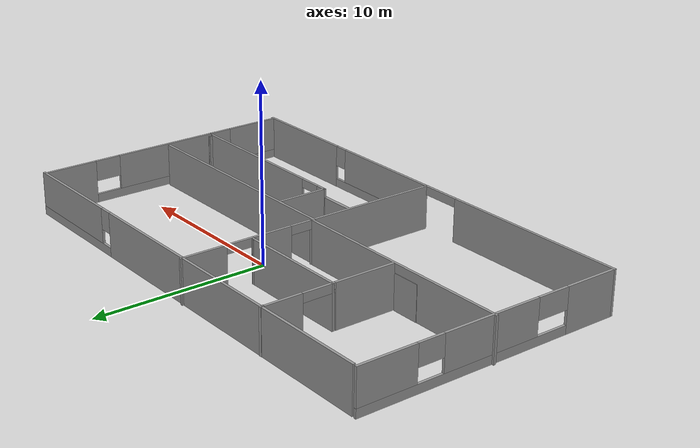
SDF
<?xml version='1.0'?>
<sdf version='1.7'>
  <model name='home'>
    <pose>-0.882719 -2.12141 0 0 -0 0</pose>
    <link name='Door_10'>
      <collision name='Door_10_Collision'>
        <geometry>
          <box>
            <size>3.07769 0.2 2</size>
          </box>
        </geometry>
        <pose>0 0 1 0 -0 0</pose>
      </collision>
      <visual name='Door_10_Visual'>
        <pose>0 0 1 0 -0 0</pose>
        <geometry>
          <box>
            <size>3.07769 0.2 2</size>
          </box>
        </geometry>
        <material>
          <script>
            <uri>file://media/materials/scripts/gazebo.material</uri>
            <name>Gazebo/Grey</name>
          </script>
        </material>
      </visual>
      <pose>1.13582 -3.22458 0 0 -0 0</pose>
    </link>
    <link name='Door_6'>
      <collision name='Door_6_Collision'>
        <geometry>
          <box>
            <size>1.6259 0.2 2</size>
          </box>
        </geometry>
        <pose>0 0 1 0 -0 0</pose>
      </collision>
      <visual name='Door_6_Visual'>
        <pose>0 0 1 0 -0 0</pose>
        <geometry>
          <box>
            <size>1.6259 0.2 2</size>
          </box>
        </geometry>
        <material>
          <script>
            <uri>file://media/materials/scripts/gazebo.material</uri>
            <name>Gazebo/Grey</name>
          </script>
        </material>
      </visual>
      <pose>-7.85189 -0.048771 0 0 -0 0</pose>
    </link>
    <link name='Wall_53'>
      <pose>0.181474 7.75463 0 0 -0 0</pose>
      <visual name='Wall_53_Visual_0'>
        <pose>-3.65102 0 1.25 0 -0 0</pose>
        <geometry>
          <box>
            <size>20.1567 0.15 2.5</size>
          </box>
        </geometry>
        <material>
          <script>
            <uri>file://media/materials/scripts/gazebo.material</uri>
            <name>Gazebo/Grey</name>
          </script>
          <ambient>1 1 1 1</ambient>
        </material>
        <meta>
          <layer>0</layer>
        </meta>
      </visual>
      <collision name='Wall_53_Collision_0'>
        <geometry>
          <box>
            <size>20.1567 0.15 2.5</size>
          </box>
        </geometry>
        <pose>-3.65102 0 1.25 0 -0 0</pose>
      </collision>
      <visual name='Wall_53_Visual_1'>
        <pose>10.0783 0 0.25 0 -0 0</pose>
        <geometry>
          <box>
            <size>7.30203 0.15 0.5</size>
          </box>
        </geometry>
        <material>
          <script>
            <uri>file://media/materials/scripts/gazebo.material</uri>
            <name>Gazebo/Grey</name>
          </script>
          <ambient>1 1 1 1</ambient>
        </material>
        <meta>
          <layer>0</layer>
        </meta>
      </visual>
      <collision name='Wall_53_Collision_1'>
        <geometry>
          <box>
            <size>7.30203 0.15 0.5</size>
          </box>
        </geometry>
        <pose>10.0783 0 0.25 0 -0 0</pose>
      </collision>
      <visual name='Wall_53_Visual_2'>
        <pose>10.4783 0 1.5 0 -0 0</pose>
        <geometry>
          <box>
            <size>6.50203 0.15 2</size>
          </box>
        </geometry>
        <material>
          <script>
            <uri>file://media/materials/scripts/gazebo.material</uri>
            <name>Gazebo/Grey</name>
          </script>
          <ambient>1 1 1 1</ambient>
        </material>
        <meta>
          <layer>0</layer>
        </meta>
      </visual>
      <collision name='Wall_53_Collision_2'>
        <geometry>
          <box>
            <size>6.50203 0.15 2</size>
          </box>
        </geometry>
        <pose>10.4783 0 1.5 0 -0 0</pose>
      </collision>
      <visual name='Wall_53_Visual_3'>
        <pose>6.82732 0 1.9 0 -0 0</pose>
        <geometry>
          <box>
            <size>0.8 0.15 1.2</size>
          </box>
        </geometry>
        <material>
          <script>
            <uri>file://media/materials/scripts/gazebo.material</uri>
            <name>Gazebo/Grey</name>
          </script>
          <ambient>1 1 1 1</ambient>
        </material>
        <meta>
          <layer>0</layer>
        </meta>
      </visual>
      <collision name='Wall_53_Collision_3'>
        <geometry>
          <box>
            <size>0.8 0.15 1.2</size>
          </box>
        </geometry>
        <pose>6.82732 0 1.9 0 -0 0</pose>
      </collision>
    </link>
    <link name='Wall_54'>
      <pose>13.7315 -0.045369 0 0 -0 -1.5708</pose>
      <visual name='Wall_54_Visual_0'>
        <pose>-6.26812 0 1.25 0 -0 0</pose>
        <geometry>
          <box>
            <size>3.21375 0.15 2.5</size>
          </box>
        </geometry>
        <material>
          <script>
            <uri>file://media/materials/scripts/gazebo.material</uri>
            <name>Gazebo/Grey</name>
          </script>
          <ambient>1 1 1 1</ambient>
        </material>
        <meta>
          <layer>0</layer>
        </meta>
      </visual>
      <collision name='Wall_54_Collision_0'>
        <geometry>
          <box>
            <size>3.21375 0.15 2.5</size>
          </box>
        </geometry>
        <pose>-6.26812 0 1.25 0 -0 0</pose>
      </collision>
      <visual name='Wall_54_Visual_1'>
        <pose>1.60688 0 0.25 0 -0 0</pose>
        <geometry>
          <box>
            <size>12.5362 0.15 0.5</size>
          </box>
        </geometry>
        <material>
          <script>
            <uri>file://media/materials/scripts/gazebo.material</uri>
            <name>Gazebo/Grey</name>
          </script>
          <ambient>1 1 1 1</ambient>
        </material>
        <meta>
          <layer>0</layer>
        </meta>
      </visual>
      <collision name='Wall_54_Collision_1'>
        <geometry>
          <box>
            <size>12.5362 0.15 0.5</size>
          </box>
        </geometry>
        <pose>1.60688 0 0.25 0 -0 0</pose>
      </collision>
      <visual name='Wall_54_Visual_2'>
        <pose>0.003403 0 1.5 0 -0 0</pose>
        <geometry>
          <box>
            <size>6.2775 0.15 2</size>
          </box>
        </geometry>
        <material>
          <script>
            <uri>file://media/materials/scripts/gazebo.material</uri>
            <name>Gazebo/Grey</name>
          </script>
          <ambient>1 1 1 1</ambient>
        </material>
        <meta>
          <layer>0</layer>
        </meta>
      </visual>
      <collision name='Wall_54_Collision_2'>
        <geometry>
          <box>
            <size>6.2775 0.15 2</size>
          </box>
        </geometry>
        <pose>0.003403 0 1.5 0 -0 0</pose>
      </collision>
      <visual name='Wall_54_Visual_3'>
        <pose>6.18079 0 1.5 0 -0 0</pose>
        <geometry>
          <box>
            <size>3.38842 0.15 2</size>
          </box>
        </geometry>
        <material>
          <script>
            <uri>file://media/materials/scripts/gazebo.material</uri>
            <name>Gazebo/Grey</name>
          </script>
          <ambient>1 1 1 1</ambient>
        </material>
        <meta>
          <layer>0</layer>
        </meta>
      </visual>
      <collision name='Wall_54_Collision_3'>
        <geometry>
          <box>
            <size>3.38842 0.15 2</size>
          </box>
        </geometry>
        <pose>6.18079 0 1.5 0 -0 0</pose>
      </collision>
      <visual name='Wall_54_Visual_4'>
        <pose>-3.8983 0 1.9 0 -0 0</pose>
        <geometry>
          <box>
            <size>1.5259 0.15 1.2</size>
          </box>
        </geometry>
        <material>
          <script>
            <uri>file://media/materials/scripts/gazebo.material</uri>
            <name>Gazebo/Grey</name>
          </script>
          <ambient>1 1 1 1</ambient>
        </material>
        <meta>
          <layer>0</layer>
        </meta>
      </visual>
      <collision name='Wall_54_Collision_4'>
        <geometry>
          <box>
            <size>1.5259 0.15 1.2</size>
          </box>
        </geometry>
        <pose>-3.8983 0 1.9 0 -0 0</pose>
      </collision>
      <visual name='Wall_54_Visual_5'>
        <pose>3.81437 0 1.9 0 -0 0</pose>
        <geometry>
          <box>
            <size>1.34442 0.15 1.2</size>
          </box>
        </geometry>
        <material>
          <script>
            <uri>file://media/materials/scripts/gazebo.material</uri>
            <name>Gazebo/Grey</name>
          </script>
          <ambient>1 1 1 1</ambient>
        </material>
        <meta>
          <layer>0</layer>
        </meta>
      </visual>
      <collision name='Wall_54_Collision_5'>
        <geometry>
          <box>
            <size>1.34442 0.15 1.2</size>
          </box>
        </geometry>
        <pose>3.81437 0 1.9 0 -0 0</pose>
      </collision>
    </link>
    <link name='Wall_55'>
      <pose>0.056474 -7.84537 0 0 -0 3.14159</pose>
      <visual name='Wall_55_Visual_0'>
        <pose>-10.6036 0 1.25 0 -0 0</pose>
        <geometry>
          <box>
            <size>6.50155 0.15 2.5</size>
          </box>
        </geometry>
        <material>
          <script>
            <uri>file://media/materials/scripts/gazebo.material</uri>
            <name>Gazebo/Grey</name>
          </script>
          <ambient>1 1 1 1</ambient>
        </material>
        <meta>
          <layer>0</layer>
        </meta>
      </visual>
      <collision name='Wall_55_Collision_0'>
        <geometry>
          <box>
            <size>6.50155 0.15 2.5</size>
          </box>
        </geometry>
        <pose>-10.6036 0 1.25 0 -0 0</pose>
      </collision>
      <visual name='Wall_55_Visual_1'>
        <pose>8.31306 0 1.25 0 -0 0</pose>
        <geometry>
          <box>
            <size>11.0826 0.15 2.5</size>
          </box>
        </geometry>
        <material>
          <script>
            <uri>file://media/materials/scripts/gazebo.material</uri>
            <name>Gazebo/Grey</name>
          </script>
          <ambient>1 1 1 1</ambient>
        </material>
        <meta>
          <layer>0</layer>
        </meta>
      </visual>
      <collision name='Wall_55_Collision_1'>
        <geometry>
          <box>
            <size>11.0826 0.15 2.5</size>
          </box>
        </geometry>
        <pose>8.31306 0 1.25 0 -0 0</pose>
      </collision>
      <visual name='Wall_55_Visual_2'>
        <pose>-3.46641 0 0.25 0 -0 0</pose>
        <geometry>
          <box>
            <size>7.77277 0.15 0.5</size>
          </box>
        </geometry>
        <material>
          <script>
            <uri>file://media/materials/scripts/gazebo.material</uri>
            <name>Gazebo/Grey</name>
          </script>
          <ambient>1 1 1 1</ambient>
        </material>
        <meta>
          <layer>0</layer>
        </meta>
      </visual>
      <collision name='Wall_55_Collision_2'>
        <geometry>
          <box>
            <size>7.77277 0.15 0.5</size>
          </box>
        </geometry>
        <pose>-3.46641 0 0.25 0 -0 0</pose>
      </collision>
      <visual name='Wall_55_Visual_3'>
        <pose>-3.06641 0 1.5 0 -0 0</pose>
        <geometry>
          <box>
            <size>6.97277 0.15 2</size>
          </box>
        </geometry>
        <material>
          <script>
            <uri>file://media/materials/scripts/gazebo.material</uri>
            <name>Gazebo/Grey</name>
          </script>
          <ambient>1 1 1 1</ambient>
        </material>
        <meta>
          <layer>0</layer>
        </meta>
      </visual>
      <collision name='Wall_55_Collision_3'>
        <geometry>
          <box>
            <size>6.97277 0.15 2</size>
          </box>
        </geometry>
        <pose>-3.06641 0 1.5 0 -0 0</pose>
      </collision>
      <visual name='Wall_55_Visual_4'>
        <pose>-6.95279 0 1.9 0 -0 0</pose>
        <geometry>
          <box>
            <size>0.8 0.15 1.2</size>
          </box>
        </geometry>
        <material>
          <script>
            <uri>file://media/materials/scripts/gazebo.material</uri>
            <name>Gazebo/Grey</name>
          </script>
          <ambient>1 1 1 1</ambient>
        </material>
        <meta>
          <layer>0</layer>
        </meta>
      </visual>
      <collision name='Wall_55_Collision_4'>
        <geometry>
          <box>
            <size>0.8 0.15 1.2</size>
          </box>
        </geometry>
        <pose>-6.95279 0 1.9 0 -0 0</pose>
      </collision>
      <visual name='Wall_55_Visual_5'>
        <pose>1.59587 0 2.25 0 -0 0</pose>
        <geometry>
          <box>
            <size>2.3518 0.15 0.5</size>
          </box>
        </geometry>
        <material>
          <script>
            <uri>file://media/materials/scripts/gazebo.material</uri>
            <name>Gazebo/Grey</name>
          </script>
          <ambient>1 1 1 1</ambient>
        </material>
        <meta>
          <layer>0</layer>
        </meta>
      </visual>
      <collision name='Wall_55_Collision_5'>
        <geometry>
          <box>
            <size>2.3518 0.15 0.5</size>
          </box>
        </geometry>
        <pose>1.59587 0 2.25 0 -0 0</pose>
      </collision>
    </link>
    <link name='Wall_56'>
      <pose>-13.7229 -0.045369 0 0 -0 1.5708</pose>
      <visual name='Wall_56_Visual_0'>
        <pose>-6.27153 0 1.25 0 -0 0</pose>
        <geometry>
          <box>
            <size>3.20695 0.15 2.5</size>
          </box>
        </geometry>
        <material>
          <script>
            <uri>file://media/materials/scripts/gazebo.material</uri>
            <name>Gazebo/Grey</name>
          </script>
          <ambient>1 1 1 1</ambient>
        </material>
        <meta>
          <layer>0</layer>
        </meta>
      </visual>
      <collision name='Wall_56_Collision_0'>
        <geometry>
          <box>
            <size>3.20695 0.15 2.5</size>
          </box>
        </geometry>
        <pose>-6.27153 0 1.25 0 -0 0</pose>
      </collision>
      <visual name='Wall_56_Visual_1'>
        <pose>1.60347 0 0.25 0 -0 0</pose>
        <geometry>
          <box>
            <size>12.5431 0.15 0.5</size>
          </box>
        </geometry>
        <material>
          <script>
            <uri>file://media/materials/scripts/gazebo.material</uri>
            <name>Gazebo/Grey</name>
          </script>
          <ambient>1 1 1 1</ambient>
        </material>
        <meta>
          <layer>0</layer>
        </meta>
      </visual>
      <collision name='Wall_56_Collision_1'>
        <geometry>
          <box>
            <size>12.5431 0.15 0.5</size>
          </box>
        </geometry>
        <pose>1.60347 0 0.25 0 -0 0</pose>
      </collision>
      <visual name='Wall_56_Visual_2'>
        <pose>0.087335 0 1.5 0 -0 0</pose>
        <geometry>
          <box>
            <size>5.73308 0.15 2</size>
          </box>
        </geometry>
        <material>
          <script>
            <uri>file://media/materials/scripts/gazebo.material</uri>
            <name>Gazebo/Grey</name>
          </script>
          <ambient>1 1 1 1</ambient>
        </material>
        <meta>
          <layer>0</layer>
        </meta>
      </visual>
      <collision name='Wall_56_Collision_2'>
        <geometry>
          <box>
            <size>5.73308 0.15 2</size>
          </box>
        </geometry>
        <pose>0.087335 0 1.5 0 -0 0</pose>
      </collision>
      <visual name='Wall_56_Visual_3'>
        <pose>6.17739 0 1.5 0 -0 0</pose>
        <geometry>
          <box>
            <size>3.39523 0.15 2</size>
          </box>
        </geometry>
        <material>
          <script>
            <uri>file://media/materials/scripts/gazebo.material</uri>
            <name>Gazebo/Grey</name>
          </script>
          <ambient>1 1 1 1</ambient>
        </material>
        <meta>
          <layer>0</layer>
        </meta>
      </visual>
      <collision name='Wall_56_Collision_3'>
        <geometry>
          <box>
            <size>3.39523 0.15 2</size>
          </box>
        </geometry>
        <pose>6.17739 0 1.5 0 -0 0</pose>
      </collision>
      <visual name='Wall_56_Visual_4'>
        <pose>-3.72363 0 1.9 0 -0 0</pose>
        <geometry>
          <box>
            <size>1.88885 0.15 1.2</size>
          </box>
        </geometry>
        <material>
          <script>
            <uri>file://media/materials/scripts/gazebo.material</uri>
            <name>Gazebo/Grey</name>
          </script>
          <ambient>1 1 1 1</ambient>
        </material>
        <meta>
          <layer>0</layer>
        </meta>
      </visual>
      <collision name='Wall_56_Collision_4'>
        <geometry>
          <box>
            <size>1.88885 0.15 1.2</size>
          </box>
        </geometry>
        <pose>-3.72363 0 1.9 0 -0 0</pose>
      </collision>
      <visual name='Wall_56_Visual_5'>
        <pose>3.71682 0 1.9 0 -0 0</pose>
        <geometry>
          <box>
            <size>1.5259 0.15 1.2</size>
          </box>
        </geometry>
        <material>
          <script>
            <uri>file://media/materials/scripts/gazebo.material</uri>
            <name>Gazebo/Grey</name>
          </script>
          <ambient>1 1 1 1</ambient>
        </material>
        <meta>
          <layer>0</layer>
        </meta>
      </visual>
      <collision name='Wall_56_Collision_5'>
        <geometry>
          <box>
            <size>1.5259 0.15 1.2</size>
          </box>
        </geometry>
        <pose>3.71682 0 1.9 0 -0 0</pose>
      </collision>
    </link>
    <link name='Wall_58'>
      <pose>-0.406711 0.045368 0 0 -0 -1.5708</pose>
      <visual name='Wall_58_Visual_0'>
        <pose>-6.5297 0 1.25 0 -0 0</pose>
        <geometry>
          <box>
            <size>2.6906 0.15 2.5</size>
          </box>
        </geometry>
        <material>
          <script>
            <uri>file://media/materials/scripts/gazebo.material</uri>
            <name>Gazebo/Grey</name>
          </script>
          <ambient>1 1 1 1</ambient>
        </material>
        <meta>
          <layer>0</layer>
        </meta>
      </visual>
      <collision name='Wall_58_Collision_0'>
        <geometry>
          <box>
            <size>2.6906 0.15 2.5</size>
          </box>
        </geometry>
        <pose>-6.5297 0 1.25 0 -0 0</pose>
      </collision>
      <visual name='Wall_58_Visual_1'>
        <pose>-2.4086 0 1.25 0 -0 0</pose>
        <geometry>
          <box>
            <size>2.29073 0.15 2.5</size>
          </box>
        </geometry>
        <material>
          <script>
            <uri>file://media/materials/scripts/gazebo.material</uri>
            <name>Gazebo/Grey</name>
          </script>
          <ambient>1 1 1 1</ambient>
        </material>
        <meta>
          <layer>0</layer>
        </meta>
      </visual>
      <collision name='Wall_58_Collision_1'>
        <geometry>
          <box>
            <size>2.29073 0.15 2.5</size>
          </box>
        </geometry>
        <pose>-2.4086 0 1.25 0 -0 0</pose>
      </collision>
      <visual name='Wall_58_Visual_2'>
        <pose>3.93736 0 1.25 0 -0 0</pose>
        <geometry>
          <box>
            <size>7.87528 0.15 2.5</size>
          </box>
        </geometry>
        <material>
          <script>
            <uri>file://media/materials/scripts/gazebo.material</uri>
            <name>Gazebo/Grey</name>
          </script>
          <ambient>1 1 1 1</ambient>
        </material>
        <meta>
          <layer>0</layer>
        </meta>
      </visual>
      <collision name='Wall_58_Collision_2'>
        <geometry>
          <box>
            <size>7.87528 0.15 2.5</size>
          </box>
        </geometry>
        <pose>3.93736 0 1.25 0 -0 0</pose>
      </collision>
      <visual name='Wall_58_Visual_3'>
        <pose>-4.36918 0 2.25 0 -0 0</pose>
        <geometry>
          <box>
            <size>1.63044 0.15 0.5</size>
          </box>
        </geometry>
        <material>
          <script>
            <uri>file://media/materials/scripts/gazebo.material</uri>
            <name>Gazebo/Grey</name>
          </script>
          <ambient>1 1 1 1</ambient>
        </material>
        <meta>
          <layer>0</layer>
        </meta>
      </visual>
      <collision name='Wall_58_Collision_3'>
        <geometry>
          <box>
            <size>1.63044 0.15 0.5</size>
          </box>
        </geometry>
        <pose>-4.36918 0 2.25 0 -0 0</pose>
      </collision>
      <visual name='Wall_58_Visual_4'>
        <pose>-0.631758 0 2.25 0 -0 0</pose>
        <geometry>
          <box>
            <size>1.26295 0.15 0.5</size>
          </box>
        </geometry>
        <material>
          <script>
            <uri>file://media/materials/scripts/gazebo.material</uri>
            <name>Gazebo/Grey</name>
          </script>
          <ambient>1 1 1 1</ambient>
        </material>
        <meta>
          <layer>0</layer>
        </meta>
      </visual>
      <collision name='Wall_58_Collision_4'>
        <geometry>
          <box>
            <size>1.26295 0.15 0.5</size>
          </box>
        </geometry>
        <pose>-0.631758 0 2.25 0 -0 0</pose>
      </collision>
    </link>
    <link name='Wall_59'>
      <collision name='Wall_59_Collision'>
        <geometry>
          <box>
            <size>0.16 0.15 2.5</size>
          </box>
        </geometry>
        <pose>0 0 1.25 0 -0 0</pose>
      </collision>
      <visual name='Wall_59_Visual'>
        <pose>0 0 1.25 0 -0 0</pose>
        <geometry>
          <box>
            <size>0.16 0.15 2.5</size>
          </box>
        </geometry>
        <material>
          <script>
            <uri>file://media/materials/scripts/gazebo.material</uri>
            <name>Gazebo/Grey</name>
          </script>
          <ambient>1 1 1 1</ambient>
        </material>
        <meta>
          <layer>0</layer>
        </meta>
      </visual>
      <pose>-0.401711 -7.75463 0 0 -0 0</pose>
    </link>
    <link name='Wall_61'>
      <collision name='Wall_61_Collision'>
        <geometry>
          <box>
            <size>13.5 0.15 2.5</size>
          </box>
        </geometry>
        <pose>0 0 1.25 0 -0 0</pose>
      </collision>
      <visual name='Wall_61_Visual'>
        <pose>0 0 1.25 0 -0 0</pose>
        <geometry>
          <box>
            <size>13.5 0.15 2.5</size>
          </box>
        </geometry>
        <material>
          <script>
            <uri>file://media/materials/scripts/gazebo.material</uri>
            <name>Gazebo/Grey</name>
          </script>
          <ambient>1 1 1 1</ambient>
        </material>
        <meta>
          <layer>0</layer>
        </meta>
      </visual>
      <pose>-7.16082 -0.048771 0 0 -0 0</pose>
    </link>
    <link name='Wall_68'>
      <collision name='Wall_68_Collision'>
        <geometry>
          <box>
            <size>0.16 0.15 2.5</size>
          </box>
        </geometry>
        <pose>0 0 1.25 0 -0 0</pose>
      </collision>
      <visual name='Wall_68_Visual'>
        <pose>0 0 1.25 0 -0 0</pose>
        <geometry>
          <box>
            <size>0.16 0.15 2.5</size>
          </box>
        </geometry>
        <material>
          <script>
            <uri>file://media/materials/scripts/gazebo.material</uri>
            <name>Gazebo/Grey</name>
          </script>
          <ambient>1 1 1 1</ambient>
        </material>
        <meta>
          <layer>0</layer>
        </meta>
      </visual>
      <pose>13.3278 -2.89877 0 0 -0 0</pose>
    </link>
    <link name='Wall_69'>
      <collision name='Wall_69_Collision'>
        <geometry>
          <box>
            <size>0.16 0.15 2.5</size>
          </box>
        </geometry>
        <pose>0 0 1.25 0 -0 0</pose>
      </collision>
      <visual name='Wall_69_Visual'>
        <pose>0 0 1.25 0 -0 0</pose>
        <geometry>
          <box>
            <size>0.16 0.15 2.5</size>
          </box>
        </geometry>
        <material>
          <script>
            <uri>file://media/materials/scripts/gazebo.material</uri>
            <name>Gazebo/Grey</name>
          </script>
          <ambient>1 1 1 1</ambient>
        </material>
        <meta>
          <layer>0</layer>
        </meta>
      </visual>
      <pose>13.3378 -2.89877 0 0 -0 0</pose>
    </link>
    <link name='Wall_77'>
      <pose>-6.93979 3.88733 0 0 -0 1.5708</pose>
      <visual name='Wall_77_Visual_0'>
        <pose>-2.08896 0 1.25 0 -0 0</pose>
        <geometry>
          <box>
            <size>3.57207 0.15 2.5</size>
          </box>
        </geometry>
        <material>
          <script>
            <uri>file://media/materials/scripts/gazebo.material</uri>
            <name>Gazebo/Grey</name>
          </script>
          <ambient>1 1 1 1</ambient>
        </material>
        <meta>
          <layer>0</layer>
        </meta>
      </visual>
      <collision name='Wall_77_Collision_0'>
        <geometry>
          <box>
            <size>3.57207 0.15 2.5</size>
          </box>
        </geometry>
        <pose>-2.08896 0 1.25 0 -0 0</pose>
      </collision>
      <visual name='Wall_77_Visual_1'>
        <pose>2.73509 0 1.25 0 -0 0</pose>
        <geometry>
          <box>
            <size>2.27982 0.15 2.5</size>
          </box>
        </geometry>
        <material>
          <script>
            <uri>file://media/materials/scripts/gazebo.material</uri>
            <name>Gazebo/Grey</name>
          </script>
          <ambient>1 1 1 1</ambient>
        </material>
        <meta>
          <layer>0</layer>
        </meta>
      </visual>
      <collision name='Wall_77_Collision_1'>
        <geometry>
          <box>
            <size>2.27982 0.15 2.5</size>
          </box>
        </geometry>
        <pose>2.73509 0 1.25 0 -0 0</pose>
      </collision>
      <visual name='Wall_77_Visual_2'>
        <pose>0.646125 0 2.25 0 -0 0</pose>
        <geometry>
          <box>
            <size>1.89811 0.15 0.5</size>
          </box>
        </geometry>
        <material>
          <script>
            <uri>file://media/materials/scripts/gazebo.material</uri>
            <name>Gazebo/Grey</name>
          </script>
          <ambient>1 1 1 1</ambient>
        </material>
        <meta>
          <layer>0</layer>
        </meta>
      </visual>
      <collision name='Wall_77_Collision_2'>
        <geometry>
          <box>
            <size>1.89811 0.15 0.5</size>
          </box>
        </geometry>
        <pose>0.646125 0 2.25 0 -0 0</pose>
      </collision>
    </link>
    <link name='Wall_78'>
      <collision name='Wall_78_Collision'>
        <geometry>
          <box>
            <size>0.241287 0.15 2.5</size>
          </box>
        </geometry>
        <pose>0 0 1.25 0 -0 0</pose>
      </collision>
      <visual name='Wall_78_Visual'>
        <pose>0 0 1.25 0 -0 0</pose>
        <geometry>
          <box>
            <size>0.241287 0.15 2.5</size>
          </box>
        </geometry>
        <material>
          <script>
            <uri>file://media/materials/scripts/gazebo.material</uri>
            <name>Gazebo/Grey</name>
          </script>
          <ambient>1 1 1 1</ambient>
        </material>
        <meta>
          <layer>0</layer>
        </meta>
      </visual>
      <pose>-6.93479 7.7327 0 0 -0 -1.46103</pose>
    </link>
    <link name='Wall_79'>
      <collision name='Wall_79_Collision'>
        <geometry>
          <box>
            <size>0.16 0.15 2.5</size>
          </box>
        </geometry>
        <pose>0 0 1.25 0 -0 0</pose>
      </collision>
      <visual name='Wall_79_Visual'>
        <pose>0 0 1.25 0 -0 0</pose>
        <geometry>
          <box>
            <size>0.16 0.15 2.5</size>
          </box>
        </geometry>
        <material>
          <script>
            <uri>file://media/materials/scripts/gazebo.material</uri>
            <name>Gazebo/Grey</name>
          </script>
          <ambient>1 1 1 1</ambient>
        </material>
        <meta>
          <layer>0</layer>
        </meta>
      </visual>
      <pose>-6.92479 7.68733 0 0 -0 0</pose>
    </link>
    <link name='Wall_81'>
      <collision name='Wall_81_Collision'>
        <geometry>
          <box>
            <size>6.5 0.15 2.5</size>
          </box>
        </geometry>
        <pose>0 0 1.25 0 -0 0</pose>
      </collision>
      <visual name='Wall_81_Visual'>
        <pose>0 0 1.25 0 -0 0</pose>
        <geometry>
          <box>
            <size>6.5 0.15 2.5</size>
          </box>
        </geometry>
        <material>
          <script>
            <uri>file://media/materials/scripts/gazebo.material</uri>
            <name>Gazebo/Grey</name>
          </script>
          <ambient>1 1 1 1</ambient>
        </material>
        <meta>
          <layer>0</layer>
        </meta>
      </visual>
      <pose>-3.76479 3.71682 0 0 -0 0</pose>
    </link>
    <link name='Wall_82'>
      <collision name='Wall_82_Collision'>
        <geometry>
          <box>
            <size>0.16 0.15 2.5</size>
          </box>
        </geometry>
        <pose>0 0 1.25 0 -0 0</pose>
      </collision>
      <visual name='Wall_82_Visual'>
        <pose>0 0 1.25 0 -0 0</pose>
        <geometry>
          <box>
            <size>0.16 0.15 2.5</size>
          </box>
        </geometry>
        <material>
          <script>
            <uri>file://media/materials/scripts/gazebo.material</uri>
            <name>Gazebo/Grey</name>
          </script>
          <ambient>1 1 1 1</ambient>
        </material>
        <meta>
          <layer>0</layer>
        </meta>
      </visual>
      <pose>-0.584792 3.71682 0 0 -0 0</pose>
    </link>
    <link name='Wall_83'>
      <collision name='Wall_83_Collision'>
        <geometry>
          <box>
            <size>0.16 0.15 2.5</size>
          </box>
        </geometry>
        <pose>0 0 1.25 0 -0 0</pose>
      </collision>
      <visual name='Wall_83_Visual'>
        <pose>0 0 1.25 0 -0 0</pose>
        <geometry>
          <box>
            <size>0.16 0.15 2.5</size>
          </box>
        </geometry>
        <material>
          <script>
            <uri>file://media/materials/scripts/gazebo.material</uri>
            <name>Gazebo/Grey</name>
          </script>
          <ambient>1 1 1 1</ambient>
        </material>
        <meta>
          <layer>0</layer>
        </meta>
      </visual>
      <pose>-0.584792 3.71682 0 0 -0 3.14159</pose>
    </link>
    <link name='Wall_87'>
      <collision name='Wall_87_Collision'>
        <geometry>
          <box>
            <size>14 0.15 2.5</size>
          </box>
        </geometry>
        <pose>0 0 1.25 0 -0 0</pose>
      </collision>
      <visual name='Wall_87_Visual'>
        <pose>0 0 1.25 0 -0 0</pose>
        <geometry>
          <box>
            <size>14 0.15 2.5</size>
          </box>
        </geometry>
        <material>
          <script>
            <uri>file://media/materials/scripts/gazebo.material</uri>
            <name>Gazebo/Grey</name>
          </script>
          <ambient>1 1 1 1</ambient>
        </material>
        <meta>
          <layer>0</layer>
        </meta>
      </visual>
      <pose>6.50657 -0.139509 0 0 -0 0</pose>
    </link>
    <link name='Wall_91'>
      <pose>7.99901 -3.13516 0 0 -0 0</pose>
      <visual name='Wall_91_Visual_0'>
        <pose>-5.17089 0 1.25 0 -0 0</pose>
        <geometry>
          <box>
            <size>0.658222 0.15 2.5</size>
          </box>
        </geometry>
        <material>
          <script>
            <uri>file://media/materials/scripts/gazebo.material</uri>
            <name>Gazebo/Grey</name>
          </script>
          <ambient>1 1 1 1</ambient>
        </material>
        <meta>
          <layer>0</layer>
        </meta>
      </visual>
      <collision name='Wall_91_Collision_0'>
        <geometry>
          <box>
            <size>0.658222 0.15 2.5</size>
          </box>
        </geometry>
        <pose>-5.17089 0 1.25 0 -0 0</pose>
      </collision>
      <visual name='Wall_91_Visual_1'>
        <pose>0.987807 0 1.25 0 -0 0</pose>
        <geometry>
          <box>
            <size>9.02439 0.15 2.5</size>
          </box>
        </geometry>
        <material>
          <script>
            <uri>file://media/materials/scripts/gazebo.material</uri>
            <name>Gazebo/Grey</name>
          </script>
          <ambient>1 1 1 1</ambient>
        </material>
        <meta>
          <layer>0</layer>
        </meta>
      </visual>
      <collision name='Wall_91_Collision_1'>
        <geometry>
          <box>
            <size>9.02439 0.15 2.5</size>
          </box>
        </geometry>
        <pose>0.987807 0 1.25 0 -0 0</pose>
      </collision>
      <visual name='Wall_91_Visual_2'>
        <pose>-4.18308 0 2.25 0 -0 0</pose>
        <geometry>
          <box>
            <size>1.31739 0.15 0.5</size>
          </box>
        </geometry>
        <material>
          <script>
            <uri>file://media/materials/scripts/gazebo.material</uri>
            <name>Gazebo/Grey</name>
          </script>
          <ambient>1 1 1 1</ambient>
        </material>
        <meta>
          <layer>0</layer>
        </meta>
      </visual>
      <collision name='Wall_91_Collision_2'>
        <geometry>
          <box>
            <size>1.31739 0.15 0.5</size>
          </box>
        </geometry>
        <pose>-4.18308 0 2.25 0 -0 0</pose>
      </collision>
    </link>
    <link name='Wall_93'>
      <collision name='Wall_93_Collision'>
        <geometry>
          <box>
            <size>3 0.15 2.5</size>
          </box>
        </geometry>
        <pose>0 0 1.25 0 -0 0</pose>
      </collision>
      <visual name='Wall_93_Visual'>
        <pose>0 0 1.25 0 -0 0</pose>
        <geometry>
          <box>
            <size>3 0.15 2.5</size>
          </box>
        </geometry>
        <material>
          <script>
            <uri>file://media/materials/scripts/gazebo.material</uri>
            <name>Gazebo/Grey</name>
          </script>
          <ambient>1 1 1 1</ambient>
        </material>
        <meta>
          <layer>0</layer>
        </meta>
      </visual>
      <pose>2.57401 -1.71016 0 0 -0 1.5708</pose>
    </link>
    <static>1</static>
  </model>
</sdf>
